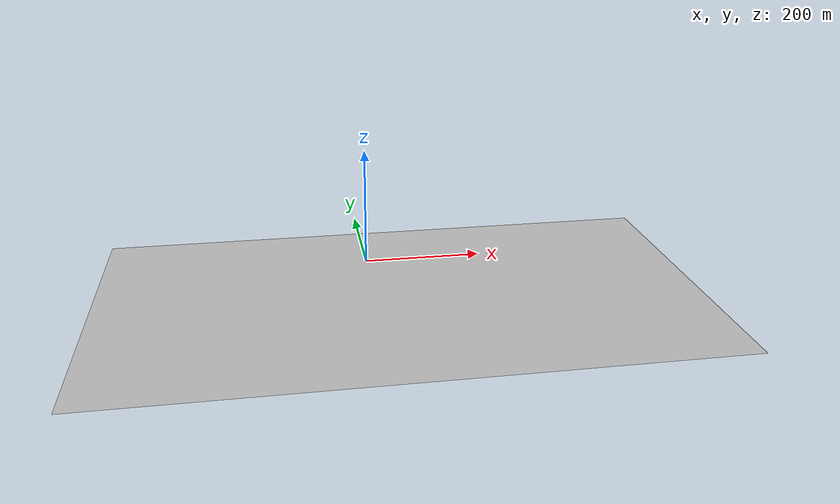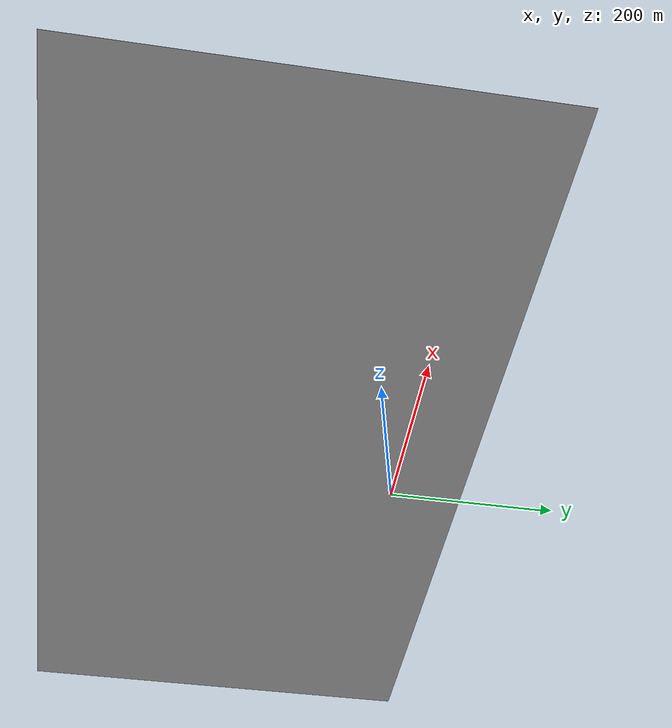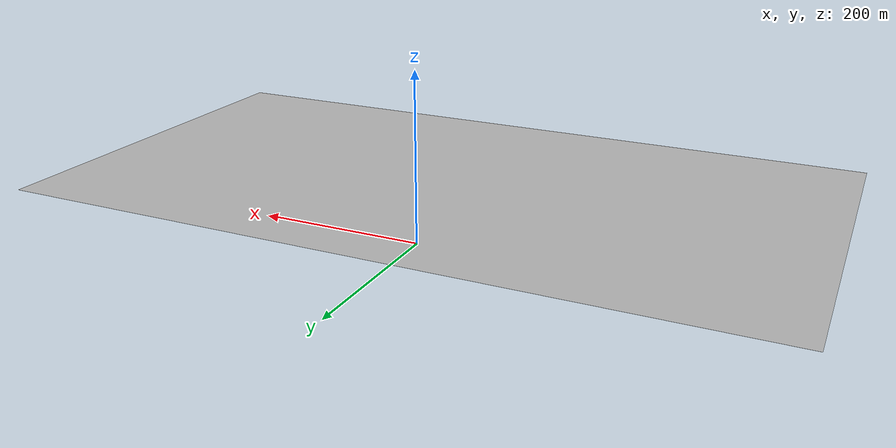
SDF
<?xml version="1.0" ?>
<sdf version="1.7">
  <model name="yol">
    <static>true</static>
    <link name="link">
      <visual name="visual">
        <geometry>
          <mesh>
            <uri>model://tam_yol_arkaplan/meshes/tam_yol_arkaplan.dae</uri>
          </mesh>
        </geometry>
      </visual>
      <collision name="collision">
        <pose>-33.400000 -1.000000 -14.800000 0 -0 0</pose>
        <geometry>
          <box>
            <size>200 200 0.1</size>
          </box>
        </geometry>
        <surface>
          <friction>
            <ode>
              <mu>100</mu>
              <mu2>50</mu2>
            </ode>
          </friction>
        </surface>
      </collision>
    </link>
  </model>
</sdf>
